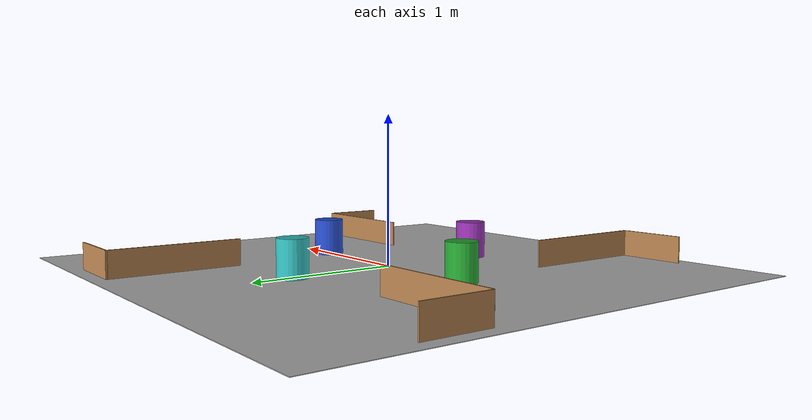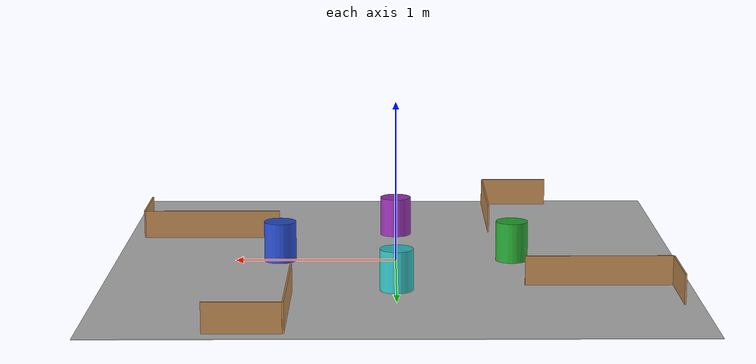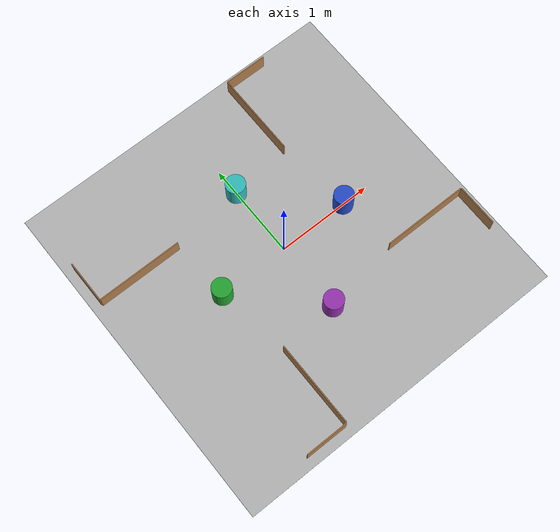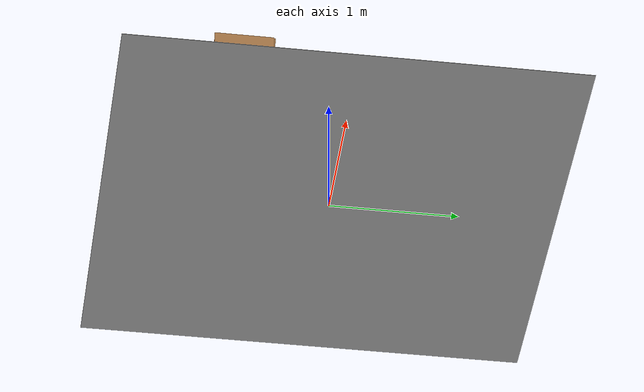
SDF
<?xml version="1.0"?>
<sdf version="1.4">
<model name="obstacle_avoidance">
  <static>true</static>
    <link name="floor">
      <collision name="collision">
        <geometry>
          <plane>
            <normal>0 0 1</normal>
            <size>3.5 3.5</size>
          </plane>
        </geometry>
        <surface>
          <friction>
            <ode>
              <mu>100</mu>
              <mu2>50</mu2>
            </ode>
          </friction>
        </surface>
      </collision>
      <visual name="visual">
        <cast_shadows>false</cast_shadows>
        <geometry>
          <plane>
            <normal>0 0 1</normal>
            <size>3.5 3.5</size>
          </plane>
        </geometry>
        <material>
          <script>
            <uri>model://obstacle_avoidance/materials/scripts</uri>
            <uri>model://obstacle_avoidance/materials/textures</uri>
            <name>ObstacleAvoidanceFloor/Image</name>
          </script>
        </material>
      </visual>
    </link>
    <link name='BLUE1'>
      <pose frame=''>0.72334 0 0.125 0 0 0</pose>
      <collision name='coll'>
        <geometry>
          <cylinder>
            <radius>0.1</radius>
            <length>0.25</length>
          </cylinder>
        </geometry>
        <max_contacts>10</max_contacts>
        <surface>
          <bounce/>
          <friction>
            <ode/>
          </friction>
          <contact>
            <ode/>
          </contact>
        </surface>
      </collision>
      <visual name='vis'>
        <geometry>
          <cylinder>
            <radius>0.1</radius>
            <length>0.25</length>
          </cylinder>
        </geometry>
        <material>
          <script>
            <uri>file://media/materials/scripts/gazebo.material</uri>
            <name>Gazebo/Blue</name>
          </script>
        </material>
      </visual>
    </link>
    <link name='PURPLE1'>
      <pose frame=''>0 -0.72334 0.125 0 0 0</pose>
      <collision name='coll'>
        <geometry>
          <cylinder>
            <radius>0.1</radius>
            <length>0.25</length>
          </cylinder>
        </geometry>
        <max_contacts>10</max_contacts>
        <surface>
          <bounce/>
          <friction>
            <ode/>
          </friction>
          <contact>
            <ode/>
          </contact>
        </surface>
      </collision>
      <visual name='vis'>
        <geometry>
          <cylinder>
            <radius>0.1</radius>
            <length>0.25</length>
          </cylinder>
        </geometry>
        <material>
          <script>
            <uri>file://media/materials/scripts/gazebo.material</uri>
            <name>Gazebo/Purple</name>
          </script>
        </material>
      </visual>
    </link>
    <link name='GREEN1'>
      <pose frame=''>-0.72334 0 0.125 0 0 0</pose>
      <collision name='coll'>
        <geometry>
          <cylinder>
            <radius>0.1</radius>
            <length>0.25</length>
          </cylinder>
        </geometry>
        <max_contacts>10</max_contacts>
        <surface>
          <bounce/>
          <friction>
            <ode/>
          </friction>
          <contact>
            <ode/>
          </contact>
        </surface>
      </collision>
      <visual name='vis'>
        <geometry>
          <cylinder>
            <radius>0.1</radius>
            <length>0.25</length>
          </cylinder>
        </geometry>
        <material>
          <script>
            <uri>file://media/materials/scripts/gazebo.material</uri>
            <name>Gazebo/Green</name>
          </script>
        </material>
      </visual>
    </link>
    <link name='TURQ1'>
      <pose frame=''>0 0.72334 0.125 0 0 0</pose>
      <collision name='coll'>
        <geometry>
          <cylinder>
            <radius>0.1</radius>
            <length>0.25</length>
          </cylinder>
        </geometry>
        <max_contacts>10</max_contacts>
        <surface>
          <bounce/>
          <friction>
            <ode/>
          </friction>
          <contact>
            <ode/>
          </contact>
        </surface>
      </collision>
      <visual name='vis'>
        <geometry>
          <cylinder>
            <radius>0.1</radius>
            <length>0.25</length>
          </cylinder>
        </geometry>
        <material>
          <script>
            <uri>file://media/materials/scripts/gazebo.material</uri>
            <name>Gazebo/Turquoise</name>
          </script>
        </material>
      </visual>
    </link>
    <link name='L_wall_tl'>
      <pose frame=''>-0.83834 -1.20833 0.09 0 0 0</pose>
      <collision name='long_coll'>
        <geometry>
          <box>
            <size>0.01 0.88 0.18</size>
          </box>
        </geometry>
        <pose frame=''>0.22 0.005 0 0 0 0</pose>
      </collision>
      <visual name='long_vis'>
        <pose frame=''>0.22 0.005 0 0 0 0</pose>
        <geometry>
          <box>
            <size>0.01 0.88 0.18</size>
          </box>
        </geometry>
        <material>
          <script>
            <uri>file://media/materials/scripts/gazebo.material</uri>
            <name>Gazebo/Wood</name>
          </script>
        </material>
      </visual>
      <collision name='short_coll'>
        <geometry>
          <box>
            <size>0.44 0.01 0.18</size>
          </box>
        </geometry>
        <pose frame=''>-0.005 -0.44 0 0 0 0</pose>
      </collision>
      <visual name='short_vis'>
        <pose frame=''>-0.005 -0.44 0 0 0 0</pose>
        <geometry>
          <box>
            <size>0.44 0.01 0.18</size>
          </box>
        </geometry>
        <material>
          <script>
            <uri>file://media/materials/scripts/gazebo.material</uri>
            <name>Gazebo/Wood</name>
          </script>
        </material>
      </visual>
    </link>
    <link name='L_wall_tr'>
      <pose frame=''>-1.20833 0.83834 0.09 0 0 -1.571</pose>
      <collision name='long_coll'>
        <geometry>
          <box>
            <size>0.01 0.88 0.18</size>
          </box>
        </geometry>
        <pose frame=''>0.22 0.005 0 0 0 0</pose>
      </collision>
      <visual name='long_vis'>
        <pose frame=''>0.22 0.005 0 0 0 0</pose>
        <geometry>
          <box>
            <size>0.01 0.88 0.18</size>
          </box>
        </geometry>
        <material>
          <script>
            <uri>file://media/materials/scripts/gazebo.material</uri>
            <name>Gazebo/Wood</name>
          </script>
        </material>
      </visual>
      <collision name='short_coll'>
        <geometry>
          <box>
            <size>0.44 0.01 0.18</size>
          </box>
        </geometry>
        <pose frame=''>-0.005 -0.44 0 0 0 0</pose>
      </collision>
      <visual name='short_vis'>
        <pose frame=''>-0.005 -0.44 0 0 0 0</pose>
        <geometry>
          <box>
            <size>0.44 0.01 0.18</size>
          </box>
        </geometry>
        <material>
          <script>
            <uri>file://media/materials/scripts/gazebo.material</uri>
            <name>Gazebo/Wood</name>
          </script>
        </material>
      </visual>
    </link>
    <link name='L_wall_br'>
      <pose frame=''>0.83834 1.20833 0.09 0 0 -3.142</pose>
      <collision name='long_coll'>
        <geometry>
          <box>
            <size>0.01 0.88 0.18</size>
          </box>
        </geometry>
        <pose frame=''>0.22 0.005 0 0 0 0</pose>
      </collision>
      <visual name='long_vis'>
        <pose frame=''>0.22 0.005 0 0 0 0</pose>
        <geometry>
          <box>
            <size>0.01 0.88 0.18</size>
          </box>
        </geometry>
        <material>
          <script>
            <uri>file://media/materials/scripts/gazebo.material</uri>
            <name>Gazebo/Wood</name>
          </script>
        </material>
      </visual>
      <collision name='short_coll'>
        <geometry>
          <box>
            <size>0.44 0.01 0.18</size>
          </box>
        </geometry>
        <pose frame=''>-0.005 -0.44 0 0 0 0</pose>
      </collision>
      <visual name='short_vis'>
        <pose frame=''>-0.005 -0.44 0 0 0 0</pose>
        <geometry>
          <box>
            <size>0.44 0.01 0.18</size>
          </box>
        </geometry>
        <material>
          <script>
            <uri>file://media/materials/scripts/gazebo.material</uri>
            <name>Gazebo/Wood</name>
          </script>
        </material>
      </visual>
    </link>
    <link name='L_wall_bl'>
      <pose frame=''>1.20833 -0.83834 0.09 0 0 1.571</pose>
      <collision name='long_coll'>
        <geometry>
          <box>
            <size>0.01 0.88 0.18</size>
          </box>
        </geometry>
        <pose frame=''>0.22 0.005 0 0 0 0</pose>
      </collision>
      <visual name='long_vis'>
        <pose frame=''>0.22 0.005 0 0 0 0</pose>
        <geometry>
          <box>
            <size>0.01 0.88 0.18</size>
          </box>
        </geometry>
        <material>
          <script>
            <uri>file://media/materials/scripts/gazebo.material</uri>
            <name>Gazebo/Wood</name>
          </script>
        </material>
      </visual>
      <collision name='short_coll'>
        <geometry>
          <box>
            <size>0.44 0.01 0.18</size>
          </box>
        </geometry>
        <pose frame=''>-0.005 -0.44 0 0 0 0</pose>
      </collision>
      <visual name='short_vis'>
        <pose frame=''>-0.005 -0.44 0 0 0 0</pose>
        <geometry>
          <box>
            <size>0.44 0.01 0.18</size>
          </box>
        </geometry>
        <material>
          <script>
            <uri>file://media/materials/scripts/gazebo.material</uri>
            <name>Gazebo/Wood</name>
          </script>
        </material>
      </visual>
    </link>
  </model>
</sdf>
